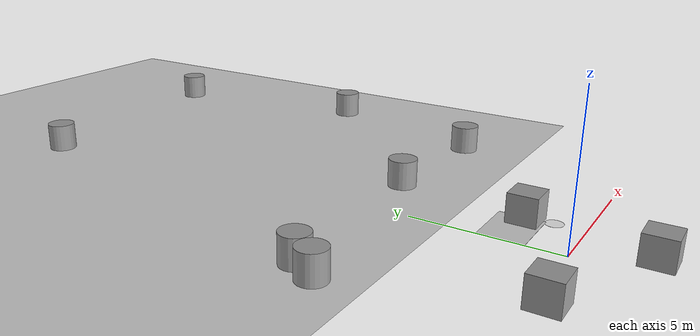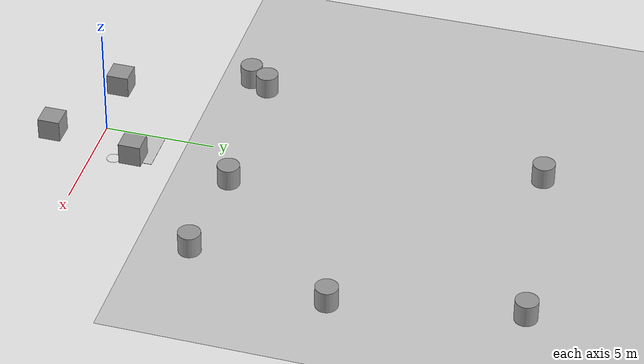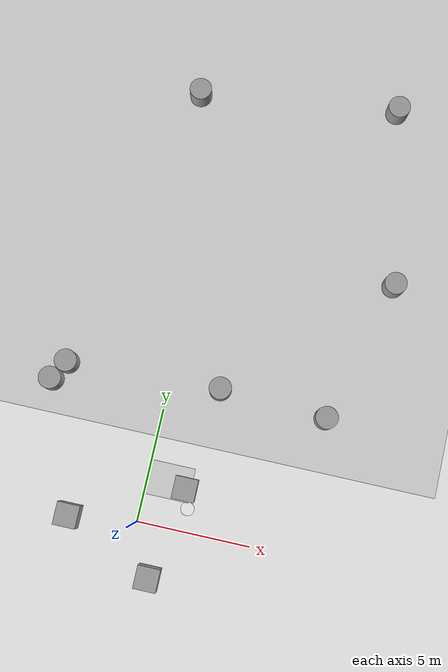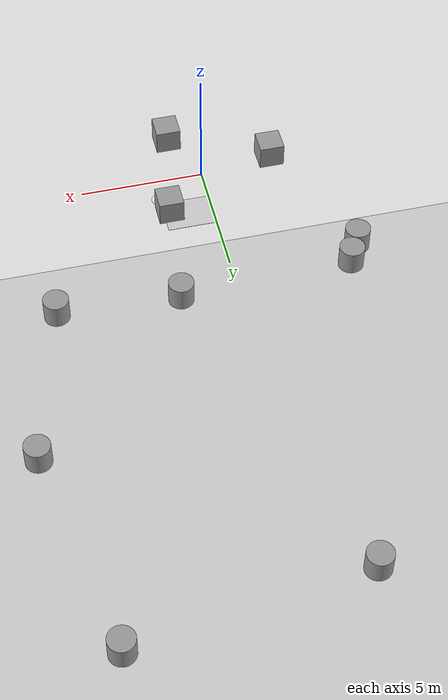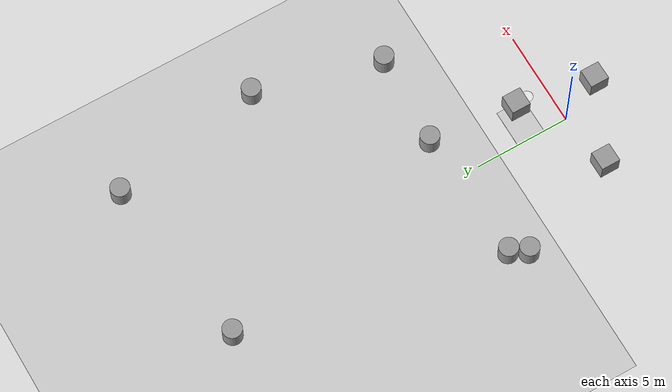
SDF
<?xml version="1.0"?>
<sdf version="1.6">
  <world name="default">

    <!-- Spherical Coordinates -->
    <spherical_coordinates>
      <surface_model>EARTH_WGS84</surface_model>
      <latitude_deg>38.161479</latitude_deg>
      <longitude_deg>-122.454630</longitude_deg>
      <elevation>488.0</elevation>
      <heading_deg>180</heading_deg>
    </spherical_coordinates>

    <!-- Sun Model -->
    <include>
      <uri>model://sun</uri>
    </include>

    <!-- Scene Setup -->
    <scene>
      <grid>false</grid>
      <shadows>false</shadows>
    </scene>

    <!-- World Model -->
    <include>
      <pose>0 16.3 0 0 0 0</pose>
      <uri>model://line_det_course</uri>
      <name>line_det_course</name>
    </include>

    <!-- Checkerboard-->
    <include>
      <pose>1 2 0.01 0 0 0</pose>
      <uri>model://checkerboard</uri>
      <name>checkerboard0</name>
    </include>

    <!-- pothole-->
    <include>
      <pose>2 1 0.01 0 0 0</pose>
      <uri>model://pothole_2ft_diameter</uri>
      <name>pothole</name>
    </include>

    <model name='unit_box'>
      <pose>-2.9767 -0.351508 0.5 0 -0 0</pose>
      <link name='link'>
        <inertial>
          <mass>1</mass>
          <inertia>
            <ixx>0.166667</ixx>
            <ixy>0</ixy>
            <ixz>0</ixz>
            <iyy>0.166667</iyy>
            <iyz>0</iyz>
            <izz>0.166667</izz>
          </inertia>
          <pose>0 0 0 0 -0 0</pose>
        </inertial>
        <collision name='collision'>
          <geometry>
            <box>
              <size>1 1 1</size>
            </box>
          </geometry>
          <max_contacts>10</max_contacts>
          <surface>
            <contact>
              <ode/>
            </contact>
            <bounce/>
            <friction>
              <torsional>
                <ode/>
              </torsional>
              <ode/>
            </friction>
          </surface>
        </collision>
        <visual name='visual'>
          <geometry>
            <box>
              <size>1 1 1</size>
            </box>
          </geometry>
          <material>
            <script>
              <name>Gazebo/Grey</name>
              <uri>file://media/materials/scripts/gazebo.material</uri>
            </script>
          </material>
        </visual>
        <self_collide>0</self_collide>
        <enable_wind>0</enable_wind>
        <kinematic>0</kinematic>
      </link>
    </model>
    <model name='unit_box_0'>
      <pose>1.73281 1.82892 0.5 0 -0 0</pose>
      <link name='link'>
        <inertial>
          <mass>1</mass>
          <inertia>
            <ixx>0.166667</ixx>
            <ixy>0</ixy>
            <ixz>0</ixz>
            <iyy>0.166667</iyy>
            <iyz>0</iyz>
            <izz>0.166667</izz>
          </inertia>
          <pose>0 0 0 0 -0 0</pose>
        </inertial>
        <collision name='collision'>
          <geometry>
            <box>
              <size>1 1 1</size>
            </box>
          </geometry>
          <max_contacts>10</max_contacts>
          <surface>
            <contact>
              <ode/>
            </contact>
            <bounce/>
            <friction>
              <torsional>
                <ode/>
              </torsional>
              <ode/>
            </friction>
          </surface>
        </collision>
        <visual name='visual'>
          <geometry>
            <box>
              <size>1 1 1</size>
            </box>
          </geometry>
          <material>
            <script>
              <name>Gazebo/Grey</name>
              <uri>file://media/materials/scripts/gazebo.material</uri>
            </script>
          </material>
        </visual>
        <self_collide>0</self_collide>
        <enable_wind>0</enable_wind>
        <kinematic>0</kinematic>
      </link>
    </model>
    <model name='unit_box_1'>
      <pose>0.996878 -2.19807 0.5 0 -0 0</pose>
      <link name='link'>
        <inertial>
          <mass>1</mass>
          <inertia>
            <ixx>0.166667</ixx>
            <ixy>0</ixy>
            <ixz>0</ixz>
            <iyy>0.166667</iyy>
            <iyz>0</iyz>
            <izz>0.166667</izz>
          </inertia>
          <pose>0 0 0 0 -0 0</pose>
        </inertial>
        <collision name='collision'>
          <geometry>
            <box>
              <size>1 1 1</size>
            </box>
          </geometry>
          <max_contacts>10</max_contacts>
          <surface>
            <contact>
              <ode/>
            </contact>
            <bounce/>
            <friction>
              <torsional>
                <ode/>
              </torsional>
              <ode/>
            </friction>
          </surface>
        </collision>
        <visual name='visual'>
          <geometry>
            <box>
              <size>1 1 1</size>
            </box>
          </geometry>
          <material>
            <script>
              <name>Gazebo/Grey</name>
              <uri>file://media/materials/scripts/gazebo.material</uri>
            </script>
          </material>
        </visual>
        <self_collide>0</self_collide>
        <enable_wind>0</enable_wind>
        <kinematic>0</kinematic>
      </link>
    </model>
    <model name='unit_cylinder'>
      <pose>2.26729 6.40593 0.5 0 -0 0</pose>
      <link name='link'>
        <inertial>
          <mass>1</mass>
          <inertia>
            <ixx>0.145833</ixx>
            <ixy>0</ixy>
            <ixz>0</ixz>
            <iyy>0.145833</iyy>
            <iyz>0</iyz>
            <izz>0.125</izz>
          </inertia>
          <pose>0 0 0 0 -0 0</pose>
        </inertial>
        <collision name='collision'>
          <geometry>
            <cylinder>
              <radius>0.5</radius>
              <length>1</length>
            </cylinder>
          </geometry>
          <max_contacts>10</max_contacts>
          <surface>
            <contact>
              <ode/>
            </contact>
            <bounce/>
            <friction>
              <torsional>
                <ode/>
              </torsional>
              <ode/>
            </friction>
          </surface>
        </collision>
        <visual name='visual'>
          <geometry>
            <cylinder>
              <radius>0.5</radius>
              <length>1</length>
            </cylinder>
          </geometry>
          <material>
            <script>
              <name>Gazebo/Grey</name>
              <uri>file://media/materials/scripts/gazebo.material</uri>
            </script>
          </material>
        </visual>
        <self_collide>0</self_collide>
        <enable_wind>0</enable_wind>
        <kinematic>0</kinematic>
      </link>
    </model>
    <model name='unit_cylinder_0'>
      <pose>7.07495 6.16617 0.5 0 -0 0</pose>
      <link name='link'>
        <inertial>
          <mass>1</mass>
          <inertia>
            <ixx>0.145833</ixx>
            <ixy>0</ixy>
            <ixz>0</ixz>
            <iyy>0.145833</iyy>
            <iyz>0</iyz>
            <izz>0.125</izz>
          </inertia>
          <pose>0 0 0 0 -0 0</pose>
        </inertial>
        <collision name='collision'>
          <geometry>
            <cylinder>
              <radius>0.5</radius>
              <length>1</length>
            </cylinder>
          </geometry>
          <max_contacts>10</max_contacts>
          <surface>
            <contact>
              <ode/>
            </contact>
            <bounce/>
            <friction>
              <torsional>
                <ode/>
              </torsional>
              <ode/>
            </friction>
          </surface>
        </collision>
        <visual name='visual'>
          <geometry>
            <cylinder>
              <radius>0.5</radius>
              <length>1</length>
            </cylinder>
          </geometry>
          <material>
            <script>
              <name>Gazebo/Grey</name>
              <uri>file://media/materials/scripts/gazebo.material</uri>
            </script>
          </material>
        </visual>
        <self_collide>0</self_collide>
        <enable_wind>0</enable_wind>
        <kinematic>0</kinematic>
      </link>
    </model>
    <model name='unit_cylinder_1'>
      <pose>8.84078 12.6426 0.5 0 -0 0</pose>
      <link name='link'>
        <inertial>
          <mass>1</mass>
          <inertia>
            <ixx>0.145833</ixx>
            <ixy>0</ixy>
            <ixz>0</ixz>
            <iyy>0.145833</iyy>
            <iyz>0</iyz>
            <izz>0.125</izz>
          </inertia>
          <pose>0 0 0 0 -0 0</pose>
        </inertial>
        <collision name='collision'>
          <geometry>
            <cylinder>
              <radius>0.5</radius>
              <length>1</length>
            </cylinder>
          </geometry>
          <max_contacts>10</max_contacts>
          <surface>
            <contact>
              <ode/>
            </contact>
            <bounce/>
            <friction>
              <torsional>
                <ode/>
              </torsional>
              <ode/>
            </friction>
          </surface>
        </collision>
        <visual name='visual'>
          <geometry>
            <cylinder>
              <radius>0.5</radius>
              <length>1</length>
            </cylinder>
          </geometry>
          <material>
            <script>
              <name>Gazebo/Grey</name>
              <uri>file://media/materials/scripts/gazebo.material</uri>
            </script>
          </material>
        </visual>
        <self_collide>0</self_collide>
        <enable_wind>0</enable_wind>
        <kinematic>0</kinematic>
      </link>
    </model>
    <model name='unit_cylinder_2'>
      <pose>7.41132 20.6859 0.5 0 -0 0</pose>
      <link name='link'>
        <inertial>
          <mass>1</mass>
          <inertia>
            <ixx>0.145833</ixx>
            <ixy>0</ixy>
            <ixz>0</ixz>
            <iyy>0.145833</iyy>
            <iyz>0</iyz>
            <izz>0.125</izz>
          </inertia>
          <pose>0 0 0 0 -0 0</pose>
        </inertial>
        <collision name='collision'>
          <geometry>
            <cylinder>
              <radius>0.5</radius>
              <length>1</length>
            </cylinder>
          </geometry>
          <max_contacts>10</max_contacts>
          <surface>
            <contact>
              <ode/>
            </contact>
            <bounce/>
            <friction>
              <torsional>
                <ode/>
              </torsional>
              <ode/>
            </friction>
          </surface>
        </collision>
        <visual name='visual'>
          <geometry>
            <cylinder>
              <radius>0.5</radius>
              <length>1</length>
            </cylinder>
          </geometry>
          <material>
            <script>
              <name>Gazebo/Grey</name>
              <uri>file://media/materials/scripts/gazebo.material</uri>
            </script>
          </material>
        </visual>
        <self_collide>0</self_collide>
        <enable_wind>0</enable_wind>
        <kinematic>0</kinematic>
      </link>
    </model>
    <model name='unit_cylinder_3'>
      <pose>-1.60493 19.5469 0.5 0 -0 0</pose>
      <link name='link'>
        <inertial>
          <mass>1</mass>
          <inertia>
            <ixx>0.145833</ixx>
            <ixy>0</ixy>
            <ixz>0</ixz>
            <iyy>0.145833</iyy>
            <iyz>0</iyz>
            <izz>0.125</izz>
          </inertia>
          <pose>0 0 0 0 -0 0</pose>
        </inertial>
        <collision name='collision'>
          <geometry>
            <cylinder>
              <radius>0.5</radius>
              <length>1</length>
            </cylinder>
          </geometry>
          <max_contacts>10</max_contacts>
          <surface>
            <contact>
              <ode/>
            </contact>
            <bounce/>
            <friction>
              <torsional>
                <ode/>
              </torsional>
              <ode/>
            </friction>
          </surface>
        </collision>
        <visual name='visual'>
          <geometry>
            <cylinder>
              <radius>0.5</radius>
              <length>1</length>
            </cylinder>
          </geometry>
          <material>
            <script>
              <name>Gazebo/Grey</name>
              <uri>file://media/materials/scripts/gazebo.material</uri>
            </script>
          </material>
        </visual>
        <self_collide>0</self_collide>
        <enable_wind>0</enable_wind>
        <kinematic>0</kinematic>
      </link>
    </model>
    <model name='unit_cylinder_4'>
      <pose>-5.11463 5.23824 0.5 0 -0 0</pose>
      <link name='link'>
        <inertial>
          <mass>1</mass>
          <inertia>
            <ixx>0.145833</ixx>
            <ixy>0</ixy>
            <ixz>0</ixz>
            <iyy>0.145833</iyy>
            <iyz>0</iyz>
            <izz>0.125</izz>
          </inertia>
          <pose>0 0 0 0 -0 0</pose>
        </inertial>
        <collision name='collision'>
          <geometry>
            <cylinder>
              <radius>0.5</radius>
              <length>1</length>
            </cylinder>
          </geometry>
          <max_contacts>10</max_contacts>
          <surface>
            <contact>
              <ode/>
            </contact>
            <bounce/>
            <friction>
              <torsional>
                <ode/>
              </torsional>
              <ode/>
            </friction>
          </surface>
        </collision>
        <visual name='visual'>
          <geometry>
            <cylinder>
              <radius>0.5</radius>
              <length>1</length>
            </cylinder>
          </geometry>
          <material>
            <script>
              <name>Gazebo/Grey</name>
              <uri>file://media/materials/scripts/gazebo.material</uri>
            </script>
          </material>
        </visual>
        <self_collide>0</self_collide>
        <enable_wind>0</enable_wind>
        <kinematic>0</kinematic>
      </link>
    </model>
    <model name='unit_cylinder_5'>
      <pose>-4.62179 6.12163 0.5 0 -0 0</pose>
      <link name='link'>
        <inertial>
          <mass>1</mass>
          <inertia>
            <ixx>0.145833</ixx>
            <ixy>0</ixy>
            <ixz>0</ixz>
            <iyy>0.145833</iyy>
            <iyz>0</iyz>
            <izz>0.125</izz>
          </inertia>
          <pose>0 0 0 0 -0 0</pose>
        </inertial>
        <collision name='collision'>
          <geometry>
            <cylinder>
              <radius>0.5</radius>
              <length>1</length>
            </cylinder>
          </geometry>
          <max_contacts>10</max_contacts>
          <surface>
            <contact>
              <ode/>
            </contact>
            <bounce/>
            <friction>
              <torsional>
                <ode/>
              </torsional>
              <ode/>
            </friction>
          </surface>
        </collision>
        <visual name='visual'>
          <geometry>
            <cylinder>
              <radius>0.5</radius>
              <length>1</length>
            </cylinder>
          </geometry>
          <material>
            <script>
              <name>Gazebo/Grey</name>
              <uri>file://media/materials/scripts/gazebo.material</uri>
            </script>
          </material>
        </visual>
        <self_collide>0</self_collide>
        <enable_wind>0</enable_wind>
        <kinematic>0</kinematic>
      </link>
    </model>

  </world>
</sdf>

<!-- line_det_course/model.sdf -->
<sdf version="1.6">
  <model name="line_det_course">
    <static>true</static>
    <!--ground-->
    <link name="ground">
      <visual name="visual">
        <geometry>
          <plane>
            <size>25 25</size>
          </plane>
        </geometry>
        <material>
          <script>
	    <uri>model://line_det_course/materials/scripts/ground.material</uri>
	    <uri>model://line_det_course/materials/textures/ground.png</uri>
            <name>ground</name>
          </script>
        </material>
      </visual>
      <collision name="collision">
        <geometry>
          <plane>
            <size>25 25</size>
          </plane>
        </geometry>
        <surface>
          <friction>
            <ode>
              <mu>100</mu>
              <mu2>50</mu2>
            </ode>
          </friction>
          <bounce/>
          <contact>
            <ode/>
          </contact>
        </surface>
      </collision>
    </link>
  </model>
</sdf>

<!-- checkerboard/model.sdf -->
<sdf version='1.7'>
  <model name='checkerboard'>
    <static>true</static>
    <link name='link_1'>
      <inertial>
        <mass>1</mass>
        <inertia>
          <ixx>0.166667</ixx>
          <ixy>0</ixy>
          <ixz>0</ixz>
          <iyy>0.166667</iyy>
          <iyz>0</iyz>
          <izz>0.166667</izz>
        </inertia>
      </inertial>
      <pose>0 -1e-06 0 0 -0 0</pose>
      <visual name='visual'>
        <pose>0 0 0 0 -0 0</pose>
        <geometry>
          <mesh>
            <uri>/dokalman/dokalman_library/model/checkerboard.dae</uri>
            <scale>1 1 1</scale>
          </mesh>
        </geometry>
        <material>
          <lighting>1</lighting>
          <script>
            <uri>/dokalman/dokalman_library/worlds/models/checkerboard/materials/textures</uri>
            <uri>/dokalman/dokalman_library/worlds/models/checkerboard/materials/scripts</uri>
            <name>checkerboard</name>
          </script>
          <shader type='pixel'/>
        </material>
        <transparency>0</transparency>
        <cast_shadows>1</cast_shadows>
      </visual>
      <collision name='collision'>
        <laser_retro>0</laser_retro>
        <max_contacts>10</max_contacts>
        <pose>0 0 0 0 -0 0</pose>
        <geometry>
          <mesh>
            <uri>/dokalman/dokalman_library/model/checkerboard.dae</uri>
            <scale>1 1 1</scale>
          </mesh>
        </geometry>
        <surface>
          <friction>
            <ode>
              <mu>1</mu>
              <mu2>1</mu2>
              <fdir1>0 0 0</fdir1>
              <slip1>0</slip1>
              <slip2>0</slip2>
            </ode>
            <torsional>
              <coefficient>1</coefficient>
              <patch_radius>0</patch_radius>
              <surface_radius>0</surface_radius>
              <use_patch_radius>1</use_patch_radius>
              <ode>
                <slip>0</slip>
              </ode>
            </torsional>
          </friction>
          <bounce>
            <restitution_coefficient>0</restitution_coefficient>
            <threshold>1e+06</threshold>
          </bounce>
          <contact>
            <collide_without_contact>0</collide_without_contact>
            <collide_without_contact_bitmask>1</collide_without_contact_bitmask>
            <collide_bitmask>1</collide_bitmask>
            <ode>
              <soft_cfm>0</soft_cfm>
              <soft_erp>0.2</soft_erp>
              <kp>1e+13</kp>
              <kd>1</kd>
              <max_vel>0.01</max_vel>
              <min_depth>0</min_depth>
            </ode>
            <bullet>
              <split_impulse>1</split_impulse>
              <split_impulse_penetration_threshold>-0.01</split_impulse_penetration_threshold>
              <soft_cfm>0</soft_cfm>
              <soft_erp>0.2</soft_erp>
              <kp>1e+13</kp>
              <kd>1</kd>
            </bullet>
          </contact>
        </surface>
      </collision>
    </link>
    <static>0</static>
    <allow_auto_disable>1</allow_auto_disable>
  </model>
</sdf>

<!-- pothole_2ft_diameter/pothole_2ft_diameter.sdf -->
<sdf version='1.7'>
  <model name='pothole_2ft_diameter'>
    <static>true</static>
    <link name='link_1'>
      <inertial>
        <mass>1</mass>
        <inertia>
          <ixx>0.166667</ixx>
          <ixy>0</ixy>
          <ixz>0</ixz>
          <iyy>0.166667</iyy>
          <iyz>0</iyz>
          <izz>0.166667</izz>
        </inertia>
      </inertial>
      <pose>0 -1e-06 0 0 -0 0</pose>
      <visual name='visual'>
        <pose>0 0 0 0 -0 0</pose>
        <geometry>
          <mesh>
            <uri>/dokalman/dokalman_library/model/pothole_2ft_diameter.dae</uri>
            <scale>1 1 1</scale>
          </mesh>
        </geometry>
        <material>
          <script>
            <uri>file://media/materials/scripts/gazebo.material</uri>
            <name>Gazebo/White</name>
          </script>
        </material>
        <transparency>0</transparency>
        <cast_shadows>1</cast_shadows>
      </visual>
      <collision name='collision'>
        <laser_retro>0</laser_retro>
        <max_contacts>10</max_contacts>
        <pose>0 0 0 0 -0 0</pose>
        <geometry>
          <mesh>
            <uri>/dokalman/dokalman_library/model/pothole_2ft_diameter.dae</uri>
            <scale>1 1 1</scale>
          </mesh>
        </geometry>
        <surface>
          <friction>
            <ode>
              <mu>1</mu>
              <mu2>1</mu2>
              <fdir1>0 0 0</fdir1>
              <slip1>0</slip1>
              <slip2>0</slip2>
            </ode>
            <torsional>
              <coefficient>1</coefficient>
              <patch_radius>0</patch_radius>
              <surface_radius>0</surface_radius>
              <use_patch_radius>1</use_patch_radius>
              <ode>
                <slip>0</slip>
              </ode>
            </torsional>
          </friction>
          <bounce>
            <restitution_coefficient>0</restitution_coefficient>
            <threshold>1e+06</threshold>
          </bounce>
          <contact>
            <collide_without_contact>0</collide_without_contact>
            <collide_without_contact_bitmask>1</collide_without_contact_bitmask>
            <collide_bitmask>1</collide_bitmask>
            <ode>
              <soft_cfm>0</soft_cfm>
              <soft_erp>0.2</soft_erp>
              <kp>1e+13</kp>
              <kd>1</kd>
              <max_vel>0.01</max_vel>
              <min_depth>0</min_depth>
            </ode>
            <bullet>
              <split_impulse>1</split_impulse>
              <split_impulse_penetration_threshold>-0.01</split_impulse_penetration_threshold>
              <soft_cfm>0</soft_cfm>
              <soft_erp>0.2</soft_erp>
              <kp>1e+13</kp>
              <kd>1</kd>
            </bullet>
          </contact>
        </surface>
      </collision>
    </link>
    <static>0</static>
    <allow_auto_disable>1</allow_auto_disable>
  </model>
</sdf>
